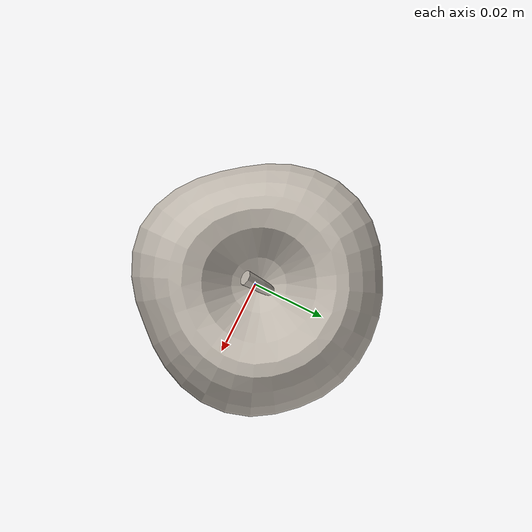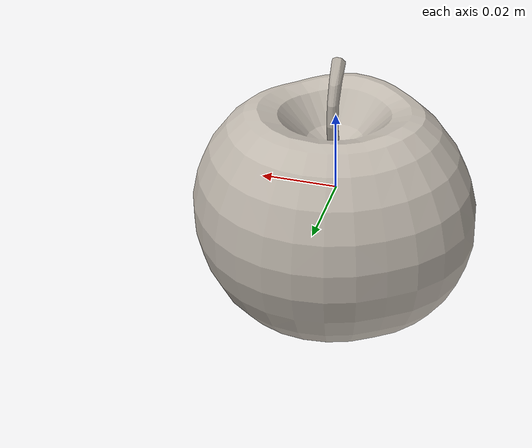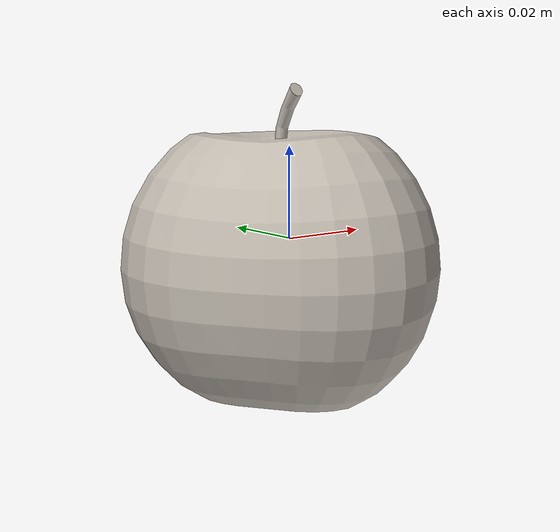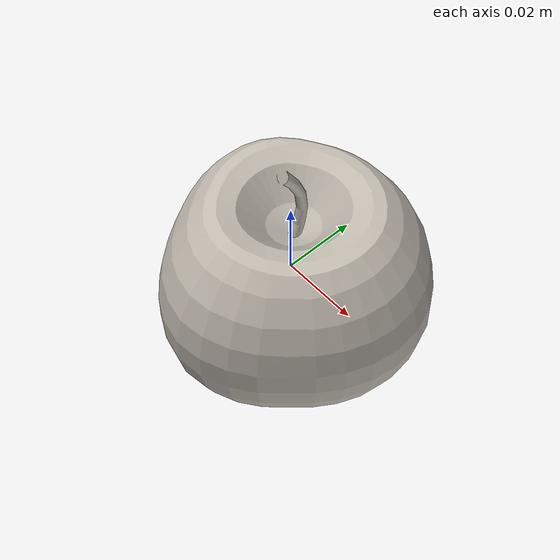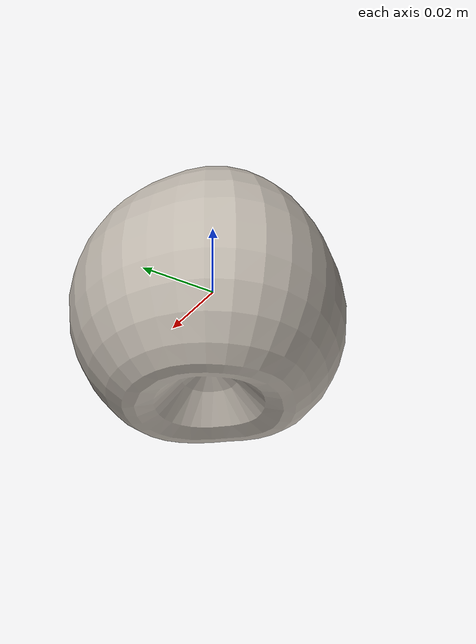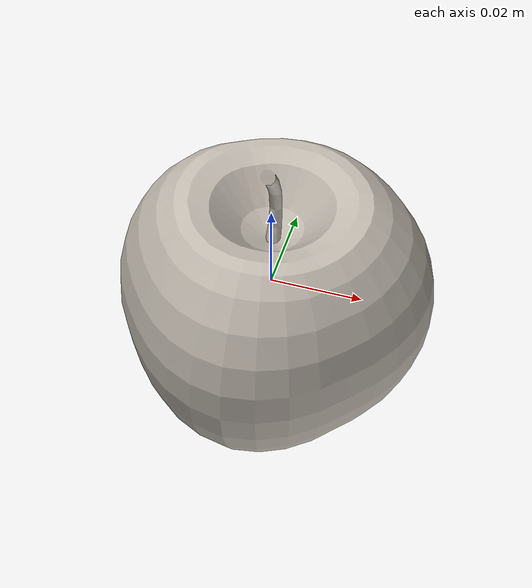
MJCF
<mujoco model="apple_45">
  <asset>
    <mesh file="visual/model_normalized_0.obj" name="apple_6_normalized_0_vis" scale="0.07 0.07 0.07" refquat="1.0 0.0 0.0 0.0" />
    <mesh file="collision/model_normalized_collision_22.obj" name="apple_6_normalized_collision_22._coll" scale="0.07 0.07 0.07" refquat="1.0 0.0 0.0 0.0" />
    <mesh file="collision/model_normalized_collision_23.obj" name="apple_6_normalized_collision_23._coll" scale="0.07 0.07 0.07" refquat="1.0 0.0 0.0 0.0" />
    <mesh file="collision/model_normalized_collision_21.obj" name="apple_6_normalized_collision_21._coll" scale="0.07 0.07 0.07" refquat="1.0 0.0 0.0 0.0" />
    <mesh file="collision/model_normalized_collision_20.obj" name="apple_6_normalized_collision_20._coll" scale="0.07 0.07 0.07" refquat="1.0 0.0 0.0 0.0" />
    <mesh file="collision/model_normalized_collision_24.obj" name="apple_6_normalized_collision_24._coll" scale="0.07 0.07 0.07" refquat="1.0 0.0 0.0 0.0" />
    <mesh file="collision/model_normalized_collision_30.obj" name="apple_6_normalized_collision_30._coll" scale="0.07 0.07 0.07" refquat="1.0 0.0 0.0 0.0" />
    <mesh file="collision/model_normalized_collision_18.obj" name="apple_6_normalized_collision_18._coll" scale="0.07 0.07 0.07" refquat="1.0 0.0 0.0 0.0" />
    <mesh file="collision/model_normalized_collision_19.obj" name="apple_6_normalized_collision_19._coll" scale="0.07 0.07 0.07" refquat="1.0 0.0 0.0 0.0" />
    <mesh file="collision/model_normalized_collision_31.obj" name="apple_6_normalized_collision_31._coll" scale="0.07 0.07 0.07" refquat="1.0 0.0 0.0 0.0" />
    <mesh file="collision/model_normalized_collision_25.obj" name="apple_6_normalized_collision_25._coll" scale="0.07 0.07 0.07" refquat="1.0 0.0 0.0 0.0" />
    <mesh file="collision/model_normalized_collision_27.obj" name="apple_6_normalized_collision_27._coll" scale="0.07 0.07 0.07" refquat="1.0 0.0 0.0 0.0" />
    <mesh file="collision/model_normalized_collision_26.obj" name="apple_6_normalized_collision_26._coll" scale="0.07 0.07 0.07" refquat="1.0 0.0 0.0 0.0" />
    <mesh file="collision/model_normalized_collision_9.obj" name="apple_6_normalized_collision_9._coll" scale="0.07 0.07 0.07" refquat="1.0 0.0 0.0 0.0" />
    <mesh file="collision/model_normalized_collision_8.obj" name="apple_6_normalized_collision_8._coll" scale="0.07 0.07 0.07" refquat="1.0 0.0 0.0 0.0" />
    <mesh file="collision/model_normalized_collision_6.obj" name="apple_6_normalized_collision_6._coll" scale="0.07 0.07 0.07" refquat="1.0 0.0 0.0 0.0" />
    <mesh file="collision/model_normalized_collision_7.obj" name="apple_6_normalized_collision_7._coll" scale="0.07 0.07 0.07" refquat="1.0 0.0 0.0 0.0" />
    <mesh file="collision/model_normalized_collision_5.obj" name="apple_6_normalized_collision_5._coll" scale="0.07 0.07 0.07" refquat="1.0 0.0 0.0 0.0" />
    <mesh file="collision/model_normalized_collision_4.obj" name="apple_6_normalized_collision_4._coll" scale="0.07 0.07 0.07" refquat="1.0 0.0 0.0 0.0" />
    <mesh file="collision/model_normalized_collision_0.obj" name="apple_6_normalized_collision_0._coll" scale="0.07 0.07 0.07" refquat="1.0 0.0 0.0 0.0" />
    <mesh file="collision/model_normalized_collision_1.obj" name="apple_6_normalized_collision_1._coll" scale="0.07 0.07 0.07" refquat="1.0 0.0 0.0 0.0" />
    <mesh file="collision/model_normalized_collision_3.obj" name="apple_6_normalized_collision_3._coll" scale="0.07 0.07 0.07" refquat="1.0 0.0 0.0 0.0" />
    <mesh file="collision/model_normalized_collision_2.obj" name="apple_6_normalized_collision_2._coll" scale="0.07 0.07 0.07" refquat="1.0 0.0 0.0 0.0" />
    <mesh file="collision/model_normalized_collision_17.obj" name="apple_6_normalized_collision_17._coll" scale="0.07 0.07 0.07" refquat="1.0 0.0 0.0 0.0" />
    <mesh file="collision/model_normalized_collision_16.obj" name="apple_6_normalized_collision_16._coll" scale="0.07 0.07 0.07" refquat="1.0 0.0 0.0 0.0" />
    <mesh file="collision/model_normalized_collision_28.obj" name="apple_6_normalized_collision_28._coll" scale="0.07 0.07 0.07" refquat="1.0 0.0 0.0 0.0" />
    <mesh file="collision/model_normalized_collision_14.obj" name="apple_6_normalized_collision_14._coll" scale="0.07 0.07 0.07" refquat="1.0 0.0 0.0 0.0" />
    <mesh file="collision/model_normalized_collision_15.obj" name="apple_6_normalized_collision_15._coll" scale="0.07 0.07 0.07" refquat="1.0 0.0 0.0 0.0" />
    <mesh file="collision/model_normalized_collision_29.obj" name="apple_6_normalized_collision_29._coll" scale="0.07 0.07 0.07" refquat="1.0 0.0 0.0 0.0" />
    <mesh file="collision/model_normalized_collision_11.obj" name="apple_6_normalized_collision_11._coll" scale="0.07 0.07 0.07" refquat="1.0 0.0 0.0 0.0" />
    <mesh file="collision/model_normalized_collision_10.obj" name="apple_6_normalized_collision_10._coll" scale="0.07 0.07 0.07" refquat="1.0 0.0 0.0 0.0" />
    <mesh file="collision/model_normalized_collision_12.obj" name="apple_6_normalized_collision_12._coll" scale="0.07 0.07 0.07" refquat="1.0 0.0 0.0 0.0" />
    <mesh file="collision/model_normalized_collision_13.obj" name="apple_6_normalized_collision_13._coll" scale="0.07 0.07 0.07" refquat="1.0 0.0 0.0 0.0" />
    <texture type="2d" name="apple_60" file="visual/image0.png" />
    <material name="Apple.001_apple_6" texture="apple_60" specular="0.5" shininess="0.25" />
  </asset>
  <worldbody>
    <body name="body_obj_apple_6">
    <inertial pos="0 0 0" mass="3" diaginertia="0.01 0.01 0.01"/>
      <freejoint /><body name="object_apple_6">
        <geom solimp="0.998 0.998 0.001" solref="0.001 1" density="10000" friction="0.95 0.3 0.1" type="mesh" mesh="apple_6_normalized_0_vis" conaffinity="0" contype="0" group="2" material="Apple.001_apple_6" />
        <geom solimp="0.998 0.998 0.001" solref="0.001 1" density="10000" friction="0.95 0.3 0.1" type="mesh" mesh="apple_6_normalized_collision_22._coll" group="3" rgba="0.8 0.8 0.8 0.0" />
        <geom solimp="0.998 0.998 0.001" solref="0.001 1" density="10000" friction="0.95 0.3 0.1" type="mesh" mesh="apple_6_normalized_collision_23._coll" group="3" rgba="0.8 0.8 0.8 0.0" />
        <geom solimp="0.998 0.998 0.001" solref="0.001 1" density="10000" friction="0.95 0.3 0.1" type="mesh" mesh="apple_6_normalized_collision_21._coll" group="3" rgba="0.8 0.8 0.8 0.0" />
        <geom solimp="0.998 0.998 0.001" solref="0.001 1" density="10000" friction="0.95 0.3 0.1" type="mesh" mesh="apple_6_normalized_collision_20._coll" group="3" rgba="0.8 0.8 0.8 0.0" />
        <geom solimp="0.998 0.998 0.001" solref="0.001 1" density="10000" friction="0.95 0.3 0.1" type="mesh" mesh="apple_6_normalized_collision_24._coll" group="3" rgba="0.8 0.8 0.8 0.0" />
        <geom solimp="0.998 0.998 0.001" solref="0.001 1" density="10000" friction="0.95 0.3 0.1" type="mesh" mesh="apple_6_normalized_collision_30._coll" group="3" rgba="0.8 0.8 0.8 0.0" />
        <geom solimp="0.998 0.998 0.001" solref="0.001 1" density="10000" friction="0.95 0.3 0.1" type="mesh" mesh="apple_6_normalized_collision_18._coll" group="3" rgba="0.8 0.8 0.8 0.0" />
        <geom solimp="0.998 0.998 0.001" solref="0.001 1" density="10000" friction="0.95 0.3 0.1" type="mesh" mesh="apple_6_normalized_collision_19._coll" group="3" rgba="0.8 0.8 0.8 0.0" />
        <geom solimp="0.998 0.998 0.001" solref="0.001 1" density="10000" friction="0.95 0.3 0.1" type="mesh" mesh="apple_6_normalized_collision_31._coll" group="3" rgba="0.8 0.8 0.8 0.0" />
        <geom solimp="0.998 0.998 0.001" solref="0.001 1" density="10000" friction="0.95 0.3 0.1" type="mesh" mesh="apple_6_normalized_collision_25._coll" group="3" rgba="0.8 0.8 0.8 0.0" />
        <geom solimp="0.998 0.998 0.001" solref="0.001 1" density="10000" friction="0.95 0.3 0.1" type="mesh" mesh="apple_6_normalized_collision_27._coll" group="3" rgba="0.8 0.8 0.8 0.0" />
        <geom solimp="0.998 0.998 0.001" solref="0.001 1" density="10000" friction="0.95 0.3 0.1" type="mesh" mesh="apple_6_normalized_collision_26._coll" group="3" rgba="0.8 0.8 0.8 0.0" />
        <geom solimp="0.998 0.998 0.001" solref="0.001 1" density="10000" friction="0.95 0.3 0.1" type="mesh" mesh="apple_6_normalized_collision_9._coll" group="3" rgba="0.8 0.8 0.8 0.0" />
        <geom solimp="0.998 0.998 0.001" solref="0.001 1" density="10000" friction="0.95 0.3 0.1" type="mesh" mesh="apple_6_normalized_collision_8._coll" group="3" rgba="0.8 0.8 0.8 0.0" />
        <geom solimp="0.998 0.998 0.001" solref="0.001 1" density="10000" friction="0.95 0.3 0.1" type="mesh" mesh="apple_6_normalized_collision_6._coll" group="3" rgba="0.8 0.8 0.8 0.0" />
        <geom solimp="0.998 0.998 0.001" solref="0.001 1" density="10000" friction="0.95 0.3 0.1" type="mesh" mesh="apple_6_normalized_collision_7._coll" group="3" rgba="0.8 0.8 0.8 0.0" />
        <geom solimp="0.998 0.998 0.001" solref="0.001 1" density="10000" friction="0.95 0.3 0.1" type="mesh" mesh="apple_6_normalized_collision_5._coll" group="3" rgba="0.8 0.8 0.8 0.0" />
        <geom solimp="0.998 0.998 0.001" solref="0.001 1" density="10000" friction="0.95 0.3 0.1" type="mesh" mesh="apple_6_normalized_collision_4._coll" group="3" rgba="0.8 0.8 0.8 0.0" />
        <geom solimp="0.998 0.998 0.001" solref="0.001 1" density="10000" friction="0.95 0.3 0.1" type="mesh" mesh="apple_6_normalized_collision_0._coll" group="3" rgba="0.8 0.8 0.8 0.0" />
        <geom solimp="0.998 0.998 0.001" solref="0.001 1" density="10000" friction="0.95 0.3 0.1" type="mesh" mesh="apple_6_normalized_collision_1._coll" group="3" rgba="0.8 0.8 0.8 0.0" />
        <geom solimp="0.998 0.998 0.001" solref="0.001 1" density="10000" friction="0.95 0.3 0.1" type="mesh" mesh="apple_6_normalized_collision_3._coll" group="3" rgba="0.8 0.8 0.8 0.0" />
        <geom solimp="0.998 0.998 0.001" solref="0.001 1" density="10000" friction="0.95 0.3 0.1" type="mesh" mesh="apple_6_normalized_collision_2._coll" group="3" rgba="0.8 0.8 0.8 0.0" />
        <geom solimp="0.998 0.998 0.001" solref="0.001 1" density="10000" friction="0.95 0.3 0.1" type="mesh" mesh="apple_6_normalized_collision_17._coll" group="3" rgba="0.8 0.8 0.8 0.0" />
        <geom solimp="0.998 0.998 0.001" solref="0.001 1" density="10000" friction="0.95 0.3 0.1" type="mesh" mesh="apple_6_normalized_collision_16._coll" group="3" rgba="0.8 0.8 0.8 0.0" />
        <geom solimp="0.998 0.998 0.001" solref="0.001 1" density="10000" friction="0.95 0.3 0.1" type="mesh" mesh="apple_6_normalized_collision_28._coll" group="3" rgba="0.8 0.8 0.8 0.0" />
        <geom solimp="0.998 0.998 0.001" solref="0.001 1" density="10000" friction="0.95 0.3 0.1" type="mesh" mesh="apple_6_normalized_collision_14._coll" group="3" rgba="0.8 0.8 0.8 0.0" />
        <geom solimp="0.998 0.998 0.001" solref="0.001 1" density="10000" friction="0.95 0.3 0.1" type="mesh" mesh="apple_6_normalized_collision_15._coll" group="3" rgba="0.8 0.8 0.8 0.0" />
        <geom solimp="0.998 0.998 0.001" solref="0.001 1" density="10000" friction="0.95 0.3 0.1" type="mesh" mesh="apple_6_normalized_collision_29._coll" group="3" rgba="0.8 0.8 0.8 0.0" />
        <geom solimp="0.998 0.998 0.001" solref="0.001 1" density="10000" friction="0.95 0.3 0.1" type="mesh" mesh="apple_6_normalized_collision_11._coll" group="3" rgba="0.8 0.8 0.8 0.0" />
        <geom solimp="0.998 0.998 0.001" solref="0.001 1" density="10000" friction="0.95 0.3 0.1" type="mesh" mesh="apple_6_normalized_collision_10._coll" group="3" rgba="0.8 0.8 0.8 0.0" />
        <geom solimp="0.998 0.998 0.001" solref="0.001 1" density="10000" friction="0.95 0.3 0.1" type="mesh" mesh="apple_6_normalized_collision_12._coll" group="3" rgba="0.8 0.8 0.8 0.0" />
        <geom solimp="0.998 0.998 0.001" solref="0.001 1" density="10000" friction="0.95 0.3 0.1" type="mesh" mesh="apple_6_normalized_collision_13._coll" group="3" rgba="0.8 0.8 0.8 0.0" />
      </body>
      <site rgba="0 0 0 0" size="0.005" pos="-4.941712499999946e-05 -9.589312500000031e-05 -0.03505636275000001" name="bottom_site_apple_6" />
      <site rgba="0 0 0 0" size="0.005" pos="-4.941712499999946e-05 -9.589312500000031e-05 0.03543268275000001" name="top_site_apple_6" />
      <site rgba="0 0 0 0" size="0.005" pos="0.03684147975000001 0.036766213500000006 0.00018815999999999836" name="horizontal_radius_site_apple_6" />
    </body>
  </worldbody>
</mujoco>
